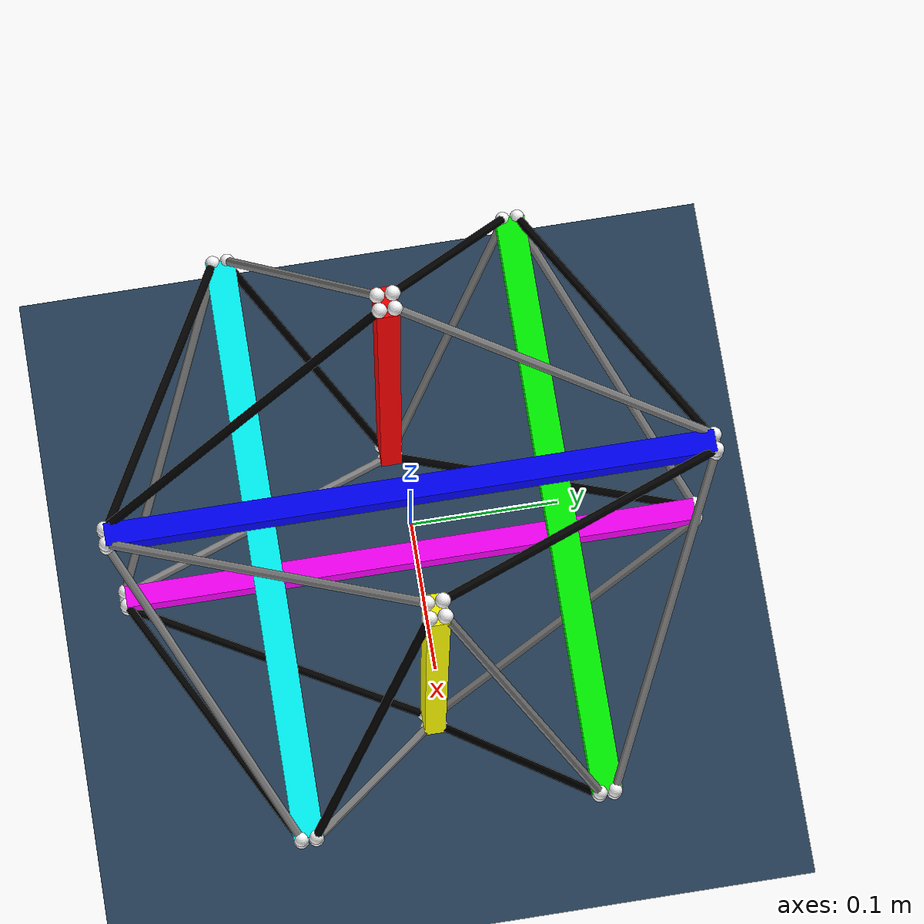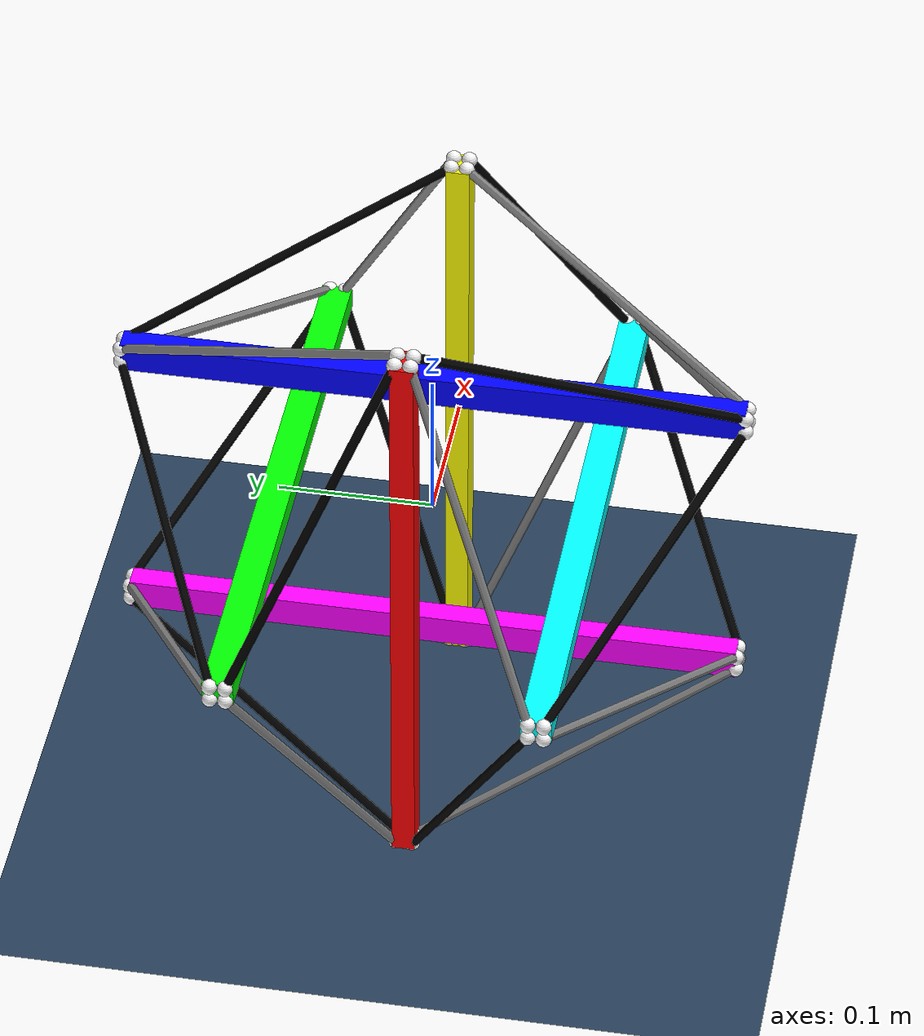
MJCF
<mujoco model="scene">
  <include file="tensegrity_12actuators_harder.xml"/>

  <visual>
    <headlight diffuse="0.6 0.6 0.6" ambient="0.5 0.5 0.3" specular="0 0 0"/>
    </visual>

    <asset>
      <texture type="skybox" builtin="gradient" rgb1="0.3 0.5 0.7" rgb2="0.1 0.1 0.1" width="512" height="3072"/>
      <texture type="2d" name="groundplane" builtin="checker" mark="edge" rgb1="0.2 0.3 0.4" rgb2="0.1 0.2 0.3" markrgb="0.8 0.8 0.8" width="300" height="300"/>
      <material name="groundplane" texture="groundplane" texuniform="true" texrepeat="5 5"
        reflectance="0.2"/>
    </asset>

    <worldbody>
      <light pos="0 0 1.5" dir="0 0 -1" directional="true"/>
      <geom name="floor" pos="0 0 -0.2" size="0 0 0.05" type="plane" material="groundplane"/>
    </worldbody>

    <contact>
      <pair geom1="floor" geom2="link1" friction="2.0 2.0"/>
      <pair geom1="floor" geom2="link2" friction="2.0 2.0"/>
      <pair geom1="floor" geom2="link3" friction="2.0 2.0"/>
      <pair geom1="floor" geom2="link4" friction="2.0 2.0"/>
      <pair geom1="floor" geom2="link5" friction="2.0 2.0"/>
      <pair geom1="floor" geom2="link6" friction="2.0 2.0"/>
      <pair geom1="link1" geom2="link2"/>
      <pair geom1="link1" geom2="link3"/>
      <pair geom1="link1" geom2="link4"/>
      <pair geom1="link1" geom2="link5"/>
      <pair geom1="link1" geom2="link6"/>
      <pair geom1="link2" geom2="link3"/>
      <pair geom1="link2" geom2="link4"/>
      <pair geom1="link2" geom2="link5"/>
      <pair geom1="link2" geom2="link6"/>
      <pair geom1="link3" geom2="link4"/>
      <pair geom1="link3" geom2="link5"/>
      <pair geom1="link3" geom2="link6"/>
      <pair geom1="link4" geom2="link5"/>
      <pair geom1="link4" geom2="link6"/>
      <pair geom1="link5" geom2="link6"/>
    </contact>

  </mujoco>

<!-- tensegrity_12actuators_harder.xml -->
<mujoco model="tensegrity">
  <option timestep="0.002" collision="predefined"/>
  <default>
    <site size="0.005" rgba="1 1 1 1"/>
    <default class="tendon_actuator">
      <general ctrllimited="true" ctrlrange="-20.0 0" dyntype="filter" dynprm="0.02"/> <!-- for real2sim -->
    </default>
    <default class="tendon_spatial">
      <tendon damping="5" stiffness="200" frictionloss="0.5"/>
    </default>
  </default>
  <worldbody>
    <light pos="0 1 1" dir="0 -1 -1" diffuse="1 1 1"/>

      <!-- link -->
    <body name="link1" pos="-0.1 0 0">
      <geom name="link1" type="box" size="0.01 0.0075 0.2" mass="0.3" rgba="1 0 0 1" pos="0 0 0"/>
      <joint name="link1" type="free"/>
      <site name="link1_top1" pos="0.005 0.005 0.2"/>
      <site name="link1_top2" pos="-0.005 0.005 0.2"/>
      <site name="link1_top3" pos="-0.005 -0.005 0.2"/>
      <site name="link1_top4" pos="0.005 -0.005 0.2"/>
      <site name="link1_bottom1" pos="0.005 0.005 -0.2"/>
      <site name="link1_bottom2" pos="-0.005 0.005 -0.2"/>
      <site name="link1_bottom3" pos="-0.005 -0.005 -0.2"/>
      <site name="link1_bottom4" pos="0.005 -0.005 -0.2"/>
      <site name="imu" pos="0.0 0 0"/>
    </body>

    <body name="link2" pos="0.1 0 0">
      <geom name="link2" type="box" size="0.01 0.0075 0.2" mass="0.3" rgba="1 1 0 1" pos="0 0 0"/>
      <joint name="link2" type="free"/>
      <site name="link2_top1" pos="0.005 0.005 0.2"/>
      <site name="link2_top2" pos="-0.005 0.005 0.2"/>
      <site name="link2_top3" pos="-0.005 -0.005 0.2"/>
      <site name="link2_top4" pos="0.005 -0.005 0.2"/>
      <site name="link2_bottom1" pos="0.005 0.005 -0.2"/>
      <site name="link2_bottom2" pos="-0.005 0.005 -0.2"/>
      <site name="link2_bottom3" pos="-0.005 -0.005 -0.2"/>
      <site name="link2_bottom4" pos="0.005 -0.005 -0.2"/>
    </body>

    <body name="link3" pos="0 0.1 0">
      <geom name="link3" type="box" size="0.2 0.01 0.0075" mass="0.3" rgba="0 1 0 1" pos="0 0 0"/>
      <joint name="link3" type="free"/>
      <site name="link3_top1" pos="0.2 0.005 0.005"/>
      <site name="link3_top2" pos="0.2 -0.005 0.005"/>
      <site name="link3_top3" pos="0.2 -0.005 -0.005"/>
      <site name="link3_top4" pos="0.2 0.005 -0.005"/>
      <site name="link3_bottom1" pos="-0.2 0.005 0.005"/>
      <site name="link3_bottom2" pos="-0.2 -0.005 0.005"/>
      <site name="link3_bottom3" pos="-0.2 -0.005 -0.005"/>
      <site name="link3_bottom4" pos="-0.2 0.005 -0.005"/>
    </body>

    <body name="link4" pos="0 -0.1 0">
      <geom name="link4" type="box" size="0.2 0.01 0.0075" mass="0.3" rgba="0 1 1 1" pos="0 0 0"/>
      <joint name="link4" type="free"/>
      <site name="link4_top1" pos="0.2 0.005 0.005"/>
      <site name="link4_top2" pos="0.2 -0.005 0.005"/>
      <site name="link4_top3" pos="0.2 -0.005 -0.005"/>
      <site name="link4_top4" pos="0.2 0.005 -0.005"/>
      <site name="link4_bottom1" pos="-0.2 0.005 0.005"/>
      <site name="link4_bottom2" pos="-0.2 -0.005 0.005"/>
      <site name="link4_bottom3" pos="-0.2 -0.005 -0.005"/>
      <site name="link4_bottom4" pos="-0.2 0.005 -0.005"/>
    </body>

    <body name="link5" pos="0 0 0.1">
      <geom name="link5" type="box" size="0.0075 0.2 0.01" mass="0.3" rgba="0 0 1 1" pos="0 0 0"/>
      <joint name="link5" type="free"/>
      <site name="link5_top1" pos="0.005 0.2 0.005"/>
      <site name="link5_top2" pos="0.005 0.2 -0.005"/>
      <site name="link5_top3" pos="-0.005 0.2 -0.005"/>
      <site name="link5_top4" pos="-0.005 0.2 0.005"/>
      <site name="link5_bottom1" pos="0.005 -0.2 0.005"/>
      <site name="link5_bottom2" pos="0.005 -0.2 -0.005"/>
      <site name="link5_bottom3" pos="-0.005 -0.2 -0.005"/>
      <site name="link5_bottom4" pos="-0.005 -0.2 0.005"/>
    </body>

    <body name="link6" pos="0 0 -0.1">
      <geom name="link6" type="box" size="0.0075 0.2 0.01" mass="0.3" rgba="1 0 1 1" pos="0 0 0"/>
      <joint name="link6" type="free"/>
      <site name="link6_top" pos="0.0 0.2 0.0"/>
      <site name="link6_top1" pos="0.005 0.2 0.005"/>
      <site name="link6_top2" pos="0.005 0.2 -0.005"/>
      <site name="link6_top3" pos="-0.005 0.2 -0.005"/>
      <site name="link6_top4" pos="-0.005 0.2 0.005"/>
      <site name="link6_bottom" pos="0.0 -0.2 0.0"/>
      <site name="link6_bottom1" pos="0.005 -0.2 0.005"/>
      <site name="link6_bottom2" pos="0.005 -0.2 -0.005"/>
      <site name="link6_bottom3" pos="-0.005 -0.2 -0.005"/>
      <site name="link6_bottom4" pos="-0.005 -0.2 0.005"/>
    </body>

  </worldbody>

  <tendon>
    <!-- link1 -->
    <spatial name="link1t_3b" class="tendon_spatial" rgba="0 0 0 1">
      <site site="link1_top2"/>
      <site site="link3_bottom2"/>
    </spatial>
    <spatial name="link1t_4b" class="tendon_spatial">
      <site site="link1_top3"/>
      <site site="link4_bottom1"/>
    </spatial>
    <spatial name="link1b_3b" class="tendon_spatial">
      <site site="link1_bottom2"/>
      <site site="link3_bottom3"/>
    </spatial>
    <spatial name="link1b_4b" class="tendon_spatial" rgba="0 0 0 1">
      <site site="link1_bottom3"/>
      <site site="link4_bottom4"/>
    </spatial>
    <spatial name="link1b_6t" class="tendon_spatial" rgba="0 0 0 1">
      <site site="link1_bottom1"/>
      <site site="link6_top3"/>
    </spatial>
    <spatial name="link1b_6b" class="tendon_spatial">
      <site site="link1_bottom4"/>
      <site site="link6_bottom3"/>
    </spatial>
    <spatial name="link1t_5t" class="tendon_spatial">
      <site site="link1_top1"/>
      <site site="link5_top4"/>
    </spatial>
    <spatial name="link1t_5b" class="tendon_spatial" rgba="0 0 0 1">
      <site site="link1_top4"/>
      <site site="link5_bottom4"/>
    </spatial>

    <!-- link2 -->
    <spatial name="link2t_3t" class="tendon_spatial">
      <site site="link2_top1"/>
      <site site="link3_top2"/>
    </spatial>
    <spatial name="link2t_4t" class="tendon_spatial" rgba="0 0 0 1">
      <site site="link2_top4"/>
      <site site="link4_top1"/>
    </spatial>
    <spatial name="link2b_3t" class="tendon_spatial" rgba="0 0 0 1">
      <site site="link2_bottom1"/>
      <site site="link3_top3"/>
    </spatial>
    <spatial name="link2b_4t" class="tendon_spatial">
      <site site="link2_bottom4"/>
      <site site="link4_top4"/>
    </spatial>
    <spatial name="link2b_6t" class="tendon_spatial">
      <site site="link2_bottom2"/>
      <site site="link6_top2"/>
    </spatial>
    <spatial name="link2b_6b" class="tendon_spatial" rgba="0 0 0 1">
      <site site="link2_bottom3"/>
      <site site="link6_bottom2"/>
    </spatial>
    <spatial name="link2t_5t" class="tendon_spatial" rgba="0 0 0 1">
      <site site="link2_top2"/>
      <site site="link5_top1"/>
    </spatial>
    <spatial name="link2t_5b" class="tendon_spatial">
      <site site="link2_top3"/>
      <site site="link5_bottom1"/>
    </spatial>

    <!-- link3 -->
    <spatial name="link3t_5t" class="tendon_spatial">
      <site site="link3_top1"/>
      <site site="link5_top2"/>
    </spatial>
    <spatial name="link3b_5t" class="tendon_spatial" rgba="0 0 0 1">
      <site site="link3_bottom1"/>
      <site site="link5_top3"/>
    </spatial>
    <spatial name="link3t_6t" class="tendon_spatial" rgba="0 0 0 1">
      <site site="link3_top4"/>
      <site site="link6_top1"/>
    </spatial>
    <spatial name="link3b_6t" class="tendon_spatial">
      <site site="link3_bottom4"/>
      <site site="link6_top4"/>
    </spatial>

    <!-- link4 -->
    <spatial name="link4t_5b" class="tendon_spatial">
      <site site="link4_top2"/>
      <site site="link5_bottom2"/>
    </spatial>
    <spatial name="link4b_5b" class="tendon_spatial" rgba="0 0 0 1">
      <site site="link4_bottom2"/>
      <site site="link5_bottom3"/>
    </spatial>
    <spatial name="link4t_6b" class="tendon_spatial" rgba="0 0 0 1">
      <site site="link4_top3"/>
      <site site="link6_bottom1"/>
    </spatial>
    <spatial name="link4b_6b" class="tendon_spatial">
      <site site="link4_bottom3"/>
      <site site="link6_bottom4"/>
    </spatial>
  </tendon>

  <actuator>
    <!-- tention-controlled actuators-->
    <general name="link1t_3b" tendon="link1t_3b"  class="tendon_actuator"/>
    <general name="link1b_4b" tendon="link1b_4b"  class="tendon_actuator"/>
    <general name="link1b_6t" tendon="link1b_6t"  class="tendon_actuator"/>
    <general name="link1t_5b" tendon="link1t_5b"  class="tendon_actuator"/>
    <general name="link2t_4t" tendon="link2t_4t"  class="tendon_actuator"/>
    <general name="link2b_3t" tendon="link2b_3t"  class="tendon_actuator"/>
    <general name="link2b_6b" tendon="link2b_6b"  class="tendon_actuator"/>
    <general name="link2t_5t" tendon="link2t_5t"  class="tendon_actuator"/>
    <general name="link3b_5t" tendon="link3b_5t"  class="tendon_actuator"/>
    <general name="link3t_6t" tendon="link3t_6t"  class="tendon_actuator"/>
    <general name="link4b_5b" tendon="link4b_5b"  class="tendon_actuator"/>
    <general name="link4t_6b" tendon="link4t_6b"  class="tendon_actuator"/>

  </actuator>

  <sensor>
  </sensor>

</mujoco>
